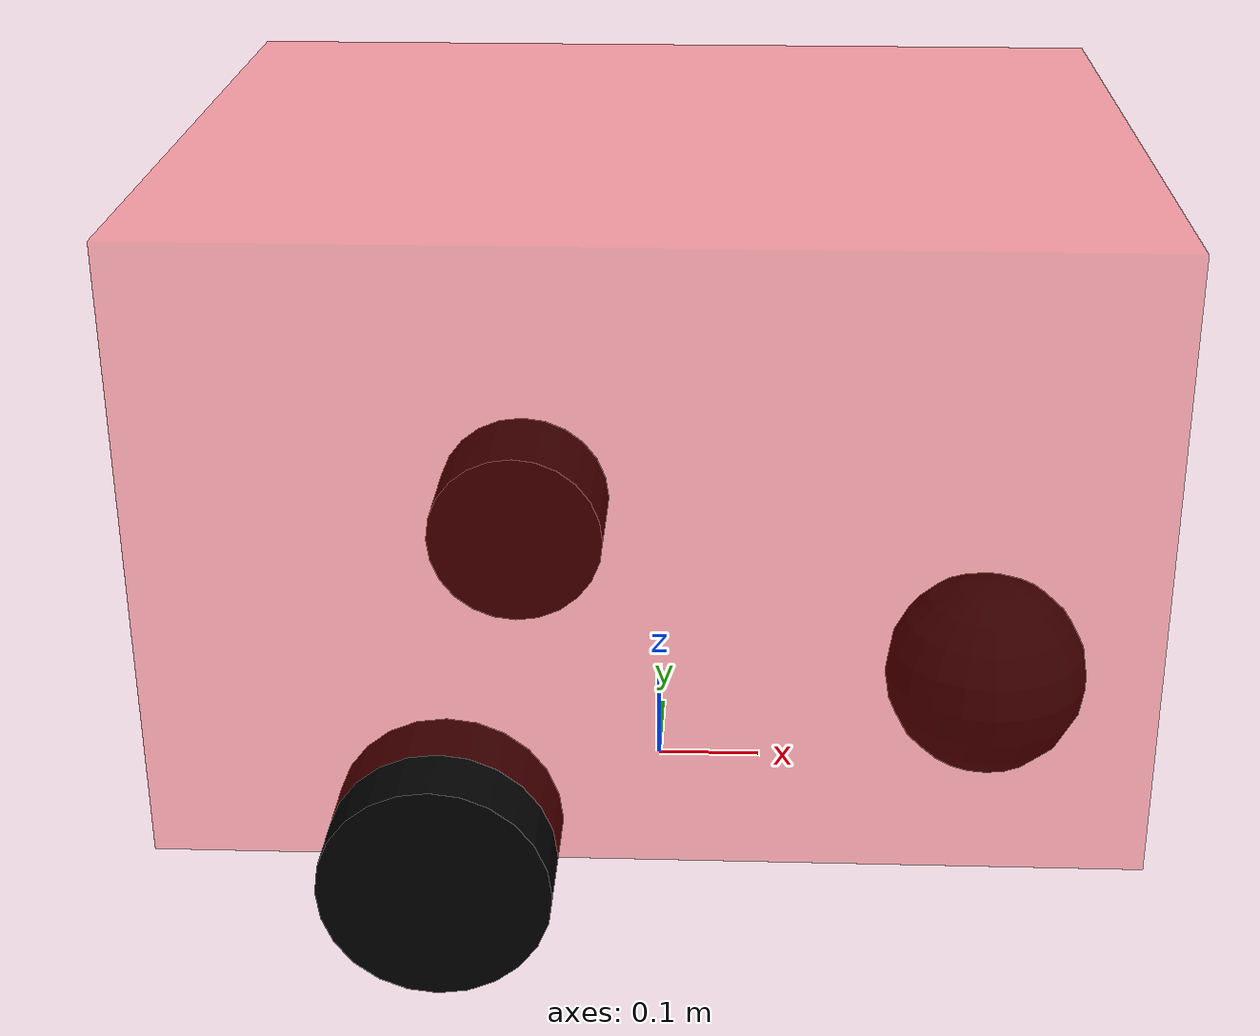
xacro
<!--
    使用 xacro 优化 URDF 版的小车底盘实现：

    实现思路:
    1.将一些常量、变量封装为 xacro:property
      比如:PI 值、小车底盘半径、离地间距、车轮半径、宽度 ....
    2.使用 宏 封装驱动轮以及支撑轮实现，调用相关宏生成驱动轮与支撑轮

-->
<!-- 根标签，必须声明 xmlns:xacro -->
<robot name="body_of_redcar" xmlns:xacro="http://www.ros.org/wiki/xacro">
    <!-- 封装变量、常量 -->
    <xacro:property name="PI" value="3.141"/>
    <!-- 宏:黑色设置 -->
    <!-- 底盘属性 -->
    <xacro:property name="base_link_radius" value="0.0001" /> <!-- base_link 半径 -->
    <xacro:property name="car_body_length" value="0.85" /> <!-- car_body 长 -->
    <xacro:property name="car_body_width" value="0.68" /> <!-- car_body 宽 -->
    <xacro:property name="car_body_height" value="0.55" /> <!-- car_body 高 -->
    <xacro:property name="earth_space" value="0.1" /> <!-- 离地间距 -->

    <!-- point -->
    <link name="base_link">
      <visual>
        <geometry>
          <sphere radius="${base_link_radius}" />
        </geometry>
        <material name="blue">
          <color rgba="0 0 1 1"/>
        </material>
      </visual>
    </link>

    <!-- 底盘 -->
    <link name="car_body">
      <visual>
        <geometry>
          <box size="${car_body_length} ${car_body_width} ${car_body_height}" />
        </geometry>
        <origin xyz="0 0 0" rpy="0 0 0" />
        <material name="red">
          <color rgba="1.0 0.0 0.0 0.3" />
        </material>
      </visual>
    </link>

    <joint name="base_link_car_body" type="fixed">
      <parent link="base_link" />
      <child link="car_body" />
      <origin xyz="0 0 ${earth_space + car_body_height / 2 }" />
    </joint>

    <!-- 驱动轮 -->
    <!-- 驱动轮属性 -->
    <xacro:property name="wheel_radius" value="0.1" /> <!-- 半径 -->
    <xacro:property name="wheel_length" value="0.12" /> <!-- 宽度 -->
    <!-- 驱动轮宏实现 -->
    <xacro:macro name="add_wheels" params="name flag">
      <link name="${name}_wheel">
        <visual>
          <geometry>
            <cylinder radius="${wheel_radius}" length="${wheel_length}" />
          </geometry>
          <origin xyz="0.0 0.0 0.0" rpy="${PI / 2} 0.0 0.0" />
          <material name="black">
            <color rgba="0 0 0 1"/>
          </material>
        </visual>
      </link>

      <joint name="${name}_wheel_joint" type="continuous">
        <parent link="car_body" />
        <child link="${name}_wheel" />
        <origin xyz="-0.175 ${flag * (car_body_width / 2)} ${-(car_body_height / 2)}" />
        <axis xyz="0 1 0" />
      </joint>
    </xacro:macro>
    <xacro:add_wheels name="base_l" flag="1" />
    <xacro:add_wheels name="base_r" flag="-1" />

    <!-- 支撑轮 -->
    <!-- 支撑轮属性 -->
    <xacro:property name="support_wheel_radius" value="0.1" /> <!-- 支撑轮半径 -->

    <link name="front_wheel">
      <visual>
        <geometry>
          <sphere radius="${support_wheel_radius}" />
        </geometry>
        <origin xyz="0 0 0" rpy="0 0 0" />
        <material name="black">
          <color rgba="0 0 0 1"/>
        </material>
      </visual>
    </link>

    <joint name="front_wheel2car_body" type="continuous">
      <parent link="car_body" />
      <child link="front_wheel" />
      <origin xyz="${(car_body_length / 2) - support_wheel_radius} 0 ${- (car_body_height / 2)}" rpy="0 0 0"/>
      <axis xyz="1 1 1" />
    </joint>

</robot>
